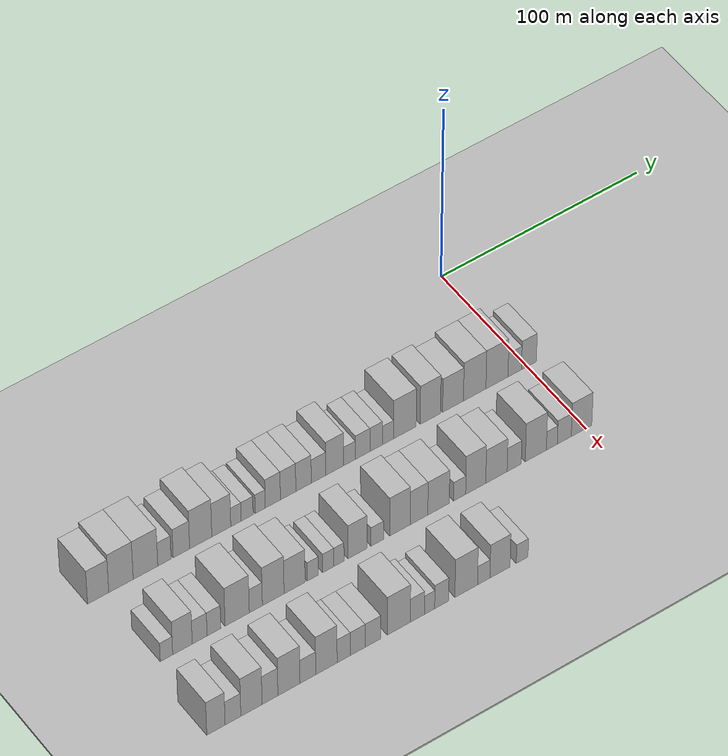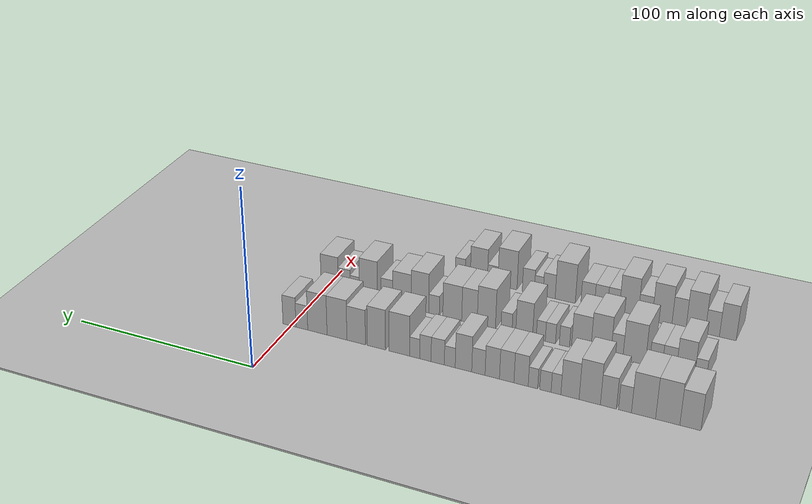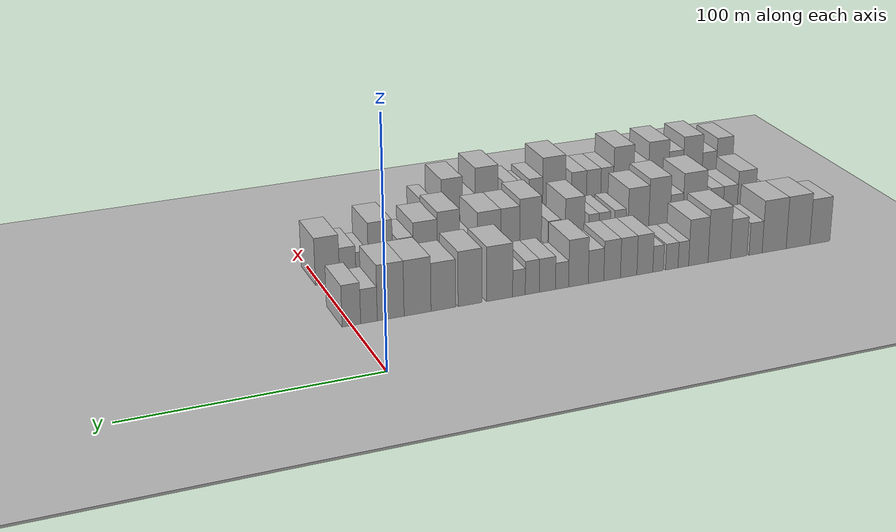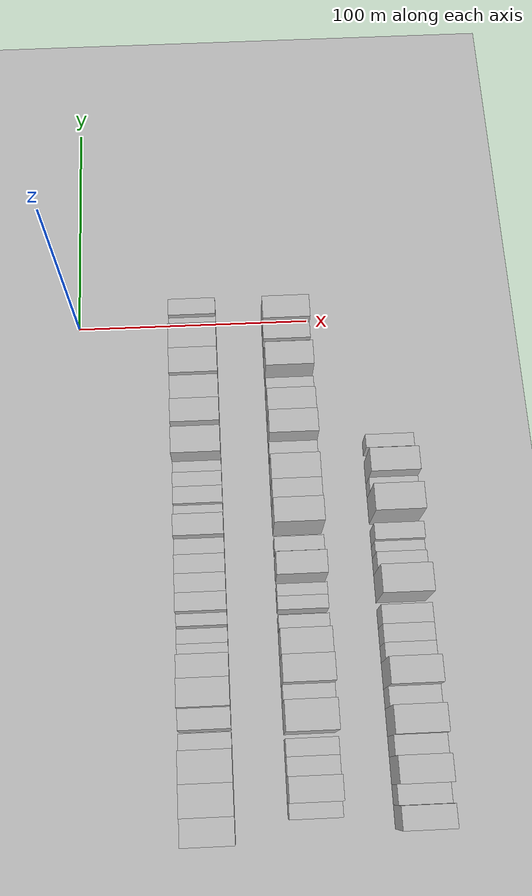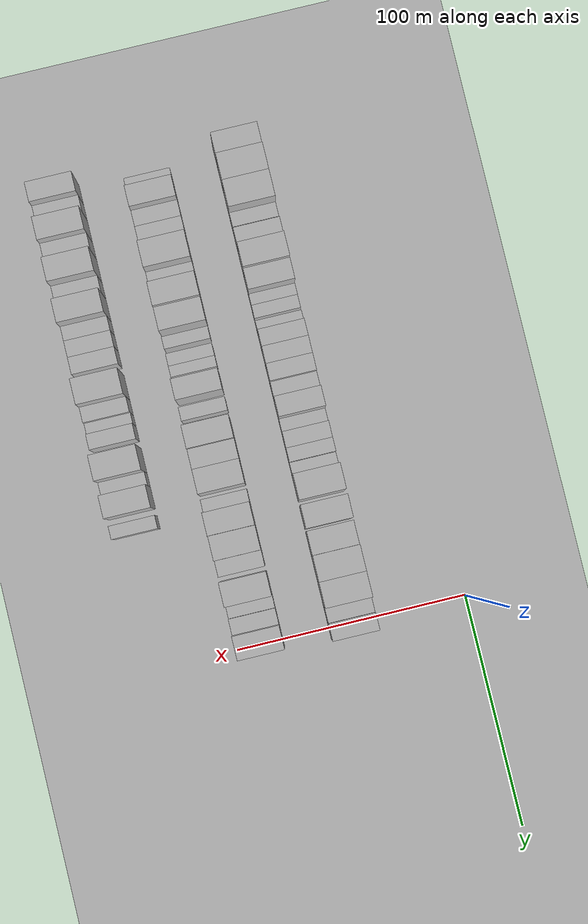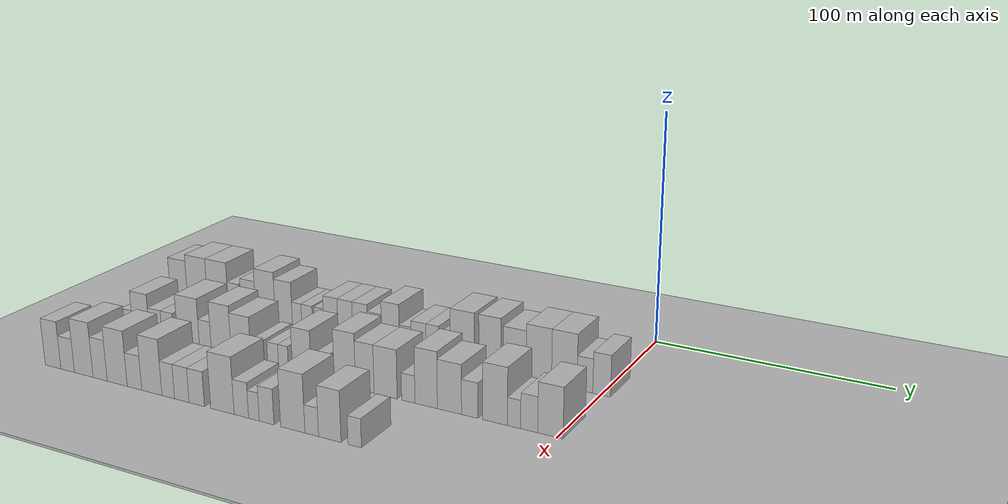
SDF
<sdf version="1.6">
 <world name="default">
  <include><name>ground_plane_1</name><uri>model://HANNAS_ground_plane</uri></include>
  <include>
   <name>ground_plane_2</name>
   <uri>model://HANNAS_ground_plane</uri>
   <pose>100 0 0  0 0 0</pose>
  </include>
  <model name="building_43">
   <static>1</static>
   <pose>50.0000 -208.1110 0 0.000000 0.000000 0.000000</pose>
   <link name="link">
    <pose>0 0 10.50 0 0 0</pose>
    <collision name="collision"><geometry><box><size>20.0000 9.9102 21.0000</size></box></geometry></collision>
    <visual name="visual">
     <cast_shadows>0</cast_shadows>
     <geometry><box><size>20.0000 9.9102 21.0000</size></box></geometry>
     <material>
      <script>
       <uri>model://HANNAS_wall/materials/scripts</uri>
       <uri>model://HANNAS_wall/materials/textures</uri>
       <name>vrc/HANNAS_wall</name>
      </script>
     </material>
    </visual>
   </link>
  </model>
  <model name="building_44">
   <static>1</static>
   <pose>50.0000 -197.3954 0 0.000000 0.000000 0.000000</pose>
   <link name="link">
    <pose>0 0 12.00 0 0 0</pose>
    <collision name="collision"><geometry><box><size>20.0000 11.5211 24.0000</size></box></geometry></collision>
    <visual name="visual">
     <cast_shadows>0</cast_shadows>
     <geometry><box><size>20.0000 11.5211 24.0000</size></box></geometry>
     <material>
      <script>
       <uri>model://HANNAS_wall/materials/scripts</uri>
       <uri>model://HANNAS_wall/materials/textures</uri>
       <name>vrc/HANNAS_wall</name>
      </script>
     </material>
    </visual>
   </link>
  </model>
  <model name="building_45">
   <static>1</static>
   <pose>50.0000 -185.8268 0 0.000000 0.000000 0.000000</pose>
   <link name="link">
    <pose>0 0 12.00 0 0 0</pose>
    <collision name="collision"><geometry><box><size>20.0000 11.6160 24.0000</size></box></geometry></collision>
    <visual name="visual">
     <cast_shadows>0</cast_shadows>
     <geometry><box><size>20.0000 11.6160 24.0000</size></box></geometry>
     <material>
      <script>
       <uri>model://HANNAS_wall/materials/scripts</uri>
       <uri>model://HANNAS_wall/materials/textures</uri>
       <name>vrc/HANNAS_wall</name>
      </script>
     </material>
    </visual>
   </link>
  </model>
  <model name="building_46">
   <static>1</static>
   <pose>50.0000 -176.8797 0 0.000000 0.000000 0.000000</pose>
   <link name="link">
    <pose>0 0 7.50 0 0 0</pose>
    <collision name="collision"><geometry><box><size>20.0000 6.2783 15.0000</size></box></geometry></collision>
    <visual name="visual">
     <cast_shadows>0</cast_shadows>
     <geometry><box><size>20.0000 6.2783 15.0000</size></box></geometry>
     <material>
      <script>
       <uri>model://HANNAS_wall/materials/scripts</uri>
       <uri>model://HANNAS_wall/materials/textures</uri>
       <name>vrc/HANNAS_wall</name>
      </script>
     </material>
    </visual>
   </link>
  </model>
  <model name="building_47">
   <static>1</static>
   <pose>50.0000 -168.8229 0 0.000000 0.000000 0.000000</pose>
   <link name="link">
    <pose>0 0 9.00 0 0 0</pose>
    <collision name="collision"><geometry><box><size>20.0000 7.8353 18.0000</size></box></geometry></collision>
    <visual name="visual">
     <cast_shadows>0</cast_shadows>
     <geometry><box><size>20.0000 7.8353 18.0000</size></box></geometry>
     <material>
      <script>
       <uri>model://HANNAS_wall/materials/scripts</uri>
       <uri>model://HANNAS_wall/materials/textures</uri>
       <name>vrc/HANNAS_wall</name>
      </script>
     </material>
    </visual>
   </link>
  </model>
  <model name="building_48">
   <static>1</static>
   <pose>50.0000 -159.6403 0 0.000000 0.000000 0.000000</pose>
   <link name="link">
    <pose>0 0 12.00 0 0 0</pose>
    <collision name="collision"><geometry><box><size>20.0000 10.5299 24.0000</size></box></geometry></collision>
    <visual name="visual">
     <cast_shadows>0</cast_shadows>
     <geometry><box><size>20.0000 10.5299 24.0000</size></box></geometry>
     <material>
      <script>
       <uri>model://HANNAS_wall/materials/scripts</uri>
       <uri>model://HANNAS_wall/materials/textures</uri>
       <name>vrc/HANNAS_wall</name>
      </script>
     </material>
    </visual>
   </link>
  </model>
  <model name="building_49">
   <static>1</static>
   <pose>50.0000 -149.8336 0 0.000000 0.000000 0.000000</pose>
   <link name="link">
    <pose>0 0 10.50 0 0 0</pose>
    <collision name="collision"><geometry><box><size>20.0000 9.0834 21.0000</size></box></geometry></collision>
    <visual name="visual">
     <cast_shadows>0</cast_shadows>
     <geometry><box><size>20.0000 9.0834 21.0000</size></box></geometry>
     <material>
      <script>
       <uri>model://HANNAS_wall/materials/scripts</uri>
       <uri>model://HANNAS_wall/materials/textures</uri>
       <name>vrc/HANNAS_wall</name>
      </script>
     </material>
    </visual>
   </link>
  </model>
  <model name="building_50">
   <static>1</static>
   <pose>50.0000 -142.8377 0 0.000000 0.000000 0.000000</pose>
   <link name="link">
    <pose>0 0 6.00 0 0 0</pose>
    <collision name="collision"><geometry><box><size>20.0000 4.9084 12.0000</size></box></geometry></collision>
    <visual name="visual">
     <cast_shadows>0</cast_shadows>
     <geometry><box><size>20.0000 4.9084 12.0000</size></box></geometry>
     <material>
      <script>
       <uri>model://HANNAS_wall/materials/scripts</uri>
       <uri>model://HANNAS_wall/materials/textures</uri>
       <name>vrc/HANNAS_wall</name>
      </script>
     </material>
    </visual>
   </link>
  </model>
  <model name="building_51">
   <static>1</static>
   <pose>50.0000 -137.5032 0 0.000000 0.000000 0.000000</pose>
   <link name="link">
    <pose>0 0 6.00 0 0 0</pose>
    <collision name="collision"><geometry><box><size>20.0000 5.7607 12.0000</size></box></geometry></collision>
    <visual name="visual">
     <cast_shadows>0</cast_shadows>
     <geometry><box><size>20.0000 5.7607 12.0000</size></box></geometry>
     <material>
      <script>
       <uri>model://HANNAS_wall/materials/scripts</uri>
       <uri>model://HANNAS_wall/materials/textures</uri>
       <name>vrc/HANNAS_wall</name>
      </script>
     </material>
    </visual>
   </link>
  </model>
  <model name="building_52">
   <static>1</static>
   <pose>50.0000 -131.1997 0 0.000000 0.000000 0.000000</pose>
   <link name="link">
    <pose>0 0 6.00 0 0 0</pose>
    <collision name="collision"><geometry><box><size>20.0000 4.8462 12.0000</size></box></geometry></collision>
    <visual name="visual">
     <cast_shadows>0</cast_shadows>
     <geometry><box><size>20.0000 4.8462 12.0000</size></box></geometry>
     <material>
      <script>
       <uri>model://HANNAS_wall/materials/scripts</uri>
       <uri>model://HANNAS_wall/materials/textures</uri>
       <name>vrc/HANNAS_wall</name>
      </script>
     </material>
    </visual>
   </link>
  </model>
  <model name="building_53">
   <static>1</static>
   <pose>50.0000 -125.1361 0 0.000000 0.000000 0.000000</pose>
   <link name="link">
    <pose>0 0 9.00 0 0 0</pose>
    <collision name="collision"><geometry><box><size>20.0000 7.2810 18.0000</size></box></geometry></collision>
    <visual name="visual">
     <cast_shadows>0</cast_shadows>
     <geometry><box><size>20.0000 7.2810 18.0000</size></box></geometry>
     <material>
      <script>
       <uri>model://HANNAS_wall/materials/scripts</uri>
       <uri>model://HANNAS_wall/materials/textures</uri>
       <name>vrc/HANNAS_wall</name>
      </script>
     </material>
    </visual>
   </link>
  </model>
  <model name="building_54">
   <static>1</static>
   <pose>50.0000 -117.7696 0 0.000000 0.000000 0.000000</pose>
   <link name="link">
    <pose>0 0 9.00 0 0 0</pose>
    <collision name="collision"><geometry><box><size>20.0000 7.4519 18.0000</size></box></geometry></collision>
    <visual name="visual">
     <cast_shadows>0</cast_shadows>
     <geometry><box><size>20.0000 7.4519 18.0000</size></box></geometry>
     <material>
      <script>
       <uri>model://HANNAS_wall/materials/scripts</uri>
       <uri>model://HANNAS_wall/materials/textures</uri>
       <name>vrc/HANNAS_wall</name>
      </script>
     </material>
    </visual>
   </link>
  </model>
  <model name="building_55">
   <static>1</static>
   <pose>50.0000 -110.3080 0 0.000000 0.000000 0.000000</pose>
   <link name="link">
    <pose>0 0 9.00 0 0 0</pose>
    <collision name="collision"><geometry><box><size>20.0000 7.4714 18.0000</size></box></geometry></collision>
    <visual name="visual">
     <cast_shadows>0</cast_shadows>
     <geometry><box><size>20.0000 7.4714 18.0000</size></box></geometry>
     <material>
      <script>
       <uri>model://HANNAS_wall/materials/scripts</uri>
       <uri>model://HANNAS_wall/materials/textures</uri>
       <name>vrc/HANNAS_wall</name>
      </script>
     </material>
    </visual>
   </link>
  </model>
  <model name="building_56">
   <static>1</static>
   <pose>50.0000 -103.0972 0 0.000000 0.000000 0.000000</pose>
   <link name="link">
    <pose>0 0 7.50 0 0 0</pose>
    <collision name="collision"><geometry><box><size>20.0000 6.9502 15.0000</size></box></geometry></collision>
    <visual name="visual">
     <cast_shadows>0</cast_shadows>
     <geometry><box><size>20.0000 6.9502 15.0000</size></box></geometry>
     <material>
      <script>
       <uri>model://HANNAS_wall/materials/scripts</uri>
       <uri>model://HANNAS_wall/materials/textures</uri>
       <name>vrc/HANNAS_wall</name>
      </script>
     </material>
    </visual>
   </link>
  </model>
  <model name="building_57">
   <static>1</static>
   <pose>50.0000 -95.2676 0 0.000000 0.000000 0.000000</pose>
   <link name="link">
    <pose>0 0 10.50 0 0 0</pose>
    <collision name="collision"><geometry><box><size>20.0000 8.7089 21.0000</size></box></geometry></collision>
    <visual name="visual">
     <cast_shadows>0</cast_shadows>
     <geometry><box><size>20.0000 8.7089 21.0000</size></box></geometry>
     <material>
      <script>
       <uri>model://HANNAS_wall/materials/scripts</uri>
       <uri>model://HANNAS_wall/materials/textures</uri>
       <name>vrc/HANNAS_wall</name>
      </script>
     </material>
    </visual>
   </link>
  </model>
  <model name="building_58">
   <static>1</static>
   <pose>50.0000 -88.0354 0 0.000000 0.000000 0.000000</pose>
   <link name="link">
    <pose>0 0 6.00 0 0 0</pose>
    <collision name="collision"><geometry><box><size>20.0000 5.7555 12.0000</size></box></geometry></collision>
    <visual name="visual">
     <cast_shadows>0</cast_shadows>
     <geometry><box><size>20.0000 5.7555 12.0000</size></box></geometry>
     <material>
      <script>
       <uri>model://HANNAS_wall/materials/scripts</uri>
       <uri>model://HANNAS_wall/materials/textures</uri>
       <name>vrc/HANNAS_wall</name>
      </script>
     </material>
    </visual>
   </link>
  </model>
  <model name="building_59">
   <static>1</static>
   <pose>50.0000 -81.6171 0 0.000000 0.000000 0.000000</pose>
   <link name="link">
    <pose>0 0 7.50 0 0 0</pose>
    <collision name="collision"><geometry><box><size>20.0000 7.0811 15.0000</size></box></geometry></collision>
    <visual name="visual">
     <cast_shadows>0</cast_shadows>
     <geometry><box><size>20.0000 7.0811 15.0000</size></box></geometry>
     <material>
      <script>
       <uri>model://HANNAS_wall/materials/scripts</uri>
       <uri>model://HANNAS_wall/materials/textures</uri>
       <name>vrc/HANNAS_wall</name>
      </script>
     </material>
    </visual>
   </link>
  </model>
  <model name="building_60">
   <static>1</static>
   <pose>50.0000 -75.0385 0 0.000000 0.000000 0.000000</pose>
   <link name="link">
    <pose>0 0 7.50 0 0 0</pose>
    <collision name="collision"><geometry><box><size>20.0000 6.0762 15.0000</size></box></geometry></collision>
    <visual name="visual">
     <cast_shadows>0</cast_shadows>
     <geometry><box><size>20.0000 6.0762 15.0000</size></box></geometry>
     <material>
      <script>
       <uri>model://HANNAS_wall/materials/scripts</uri>
       <uri>model://HANNAS_wall/materials/textures</uri>
       <name>vrc/HANNAS_wall</name>
      </script>
     </material>
    </visual>
   </link>
  </model>
  <model name="building_61">
   <static>1</static>
   <pose>50.0000 -69.2660 0 0.000000 0.000000 0.000000</pose>
   <link name="link">
    <pose>0 0 6.00 0 0 0</pose>
    <collision name="collision"><geometry><box><size>20.0000 5.4688 12.0000</size></box></geometry></collision>
    <visual name="visual">
     <cast_shadows>0</cast_shadows>
     <geometry><box><size>20.0000 5.4688 12.0000</size></box></geometry>
     <material>
      <script>
       <uri>model://HANNAS_wall/materials/scripts</uri>
       <uri>model://HANNAS_wall/materials/textures</uri>
       <name>vrc/HANNAS_wall</name>
      </script>
     </material>
    </visual>
   </link>
  </model>
  <model name="building_62">
   <static>1</static>
   <pose>50.0000 -60.9565 0 0.000000 0.000000 0.000000</pose>
   <link name="link">
    <pose>0 0 12.00 0 0 0</pose>
    <collision name="collision"><geometry><box><size>20.0000 11.1501 24.0000</size></box></geometry></collision>
    <visual name="visual">
     <cast_shadows>0</cast_shadows>
     <geometry><box><size>20.0000 11.1501 24.0000</size></box></geometry>
     <material>
      <script>
       <uri>model://HANNAS_wall/materials/scripts</uri>
       <uri>model://HANNAS_wall/materials/textures</uri>
       <name>vrc/HANNAS_wall</name>
      </script>
     </material>
    </visual>
   </link>
  </model>
  <model name="building_63">
   <static>1</static>
   <pose>50.0000 -48.3628 0 0.000000 0.000000 0.000000</pose>
   <link name="link">
    <pose>0 0 12.00 0 0 0</pose>
    <collision name="collision"><geometry><box><size>20.0000 10.0373 24.0000</size></box></geometry></collision>
    <visual name="visual">
     <cast_shadows>0</cast_shadows>
     <geometry><box><size>20.0000 10.0373 24.0000</size></box></geometry>
     <material>
      <script>
       <uri>model://HANNAS_wall/materials/scripts</uri>
       <uri>model://HANNAS_wall/materials/textures</uri>
       <name>vrc/HANNAS_wall</name>
      </script>
     </material>
    </visual>
   </link>
  </model>
  <model name="building_64">
   <static>1</static>
   <pose>50.0000 -37.1862 0 0.000000 0.000000 0.000000</pose>
   <link name="link">
    <pose>0 0 10.50 0 0 0</pose>
    <collision name="collision"><geometry><box><size>20.0000 10.3160 21.0000</size></box></geometry></collision>
    <visual name="visual">
     <cast_shadows>0</cast_shadows>
     <geometry><box><size>20.0000 10.3160 21.0000</size></box></geometry>
     <material>
      <script>
       <uri>model://HANNAS_wall/materials/scripts</uri>
       <uri>model://HANNAS_wall/materials/textures</uri>
       <name>vrc/HANNAS_wall</name>
      </script>
     </material>
    </visual>
   </link>
  </model>
  <model name="building_65">
   <static>1</static>
   <pose>50.0000 -26.4524 0 0.000000 0.000000 0.000000</pose>
   <link name="link">
    <pose>0 0 12.00 0 0 0</pose>
    <collision name="collision"><geometry><box><size>20.0000 11.1516 24.0000</size></box></geometry></collision>
    <visual name="visual">
     <cast_shadows>0</cast_shadows>
     <geometry><box><size>20.0000 11.1516 24.0000</size></box></geometry>
     <material>
      <script>
       <uri>model://HANNAS_wall/materials/scripts</uri>
       <uri>model://HANNAS_wall/materials/textures</uri>
       <name>vrc/HANNAS_wall</name>
      </script>
     </material>
    </visual>
   </link>
  </model>
  <model name="building_66">
   <static>1</static>
   <pose>50.0000 -15.3967 0 0.000000 0.000000 0.000000</pose>
   <link name="link">
    <pose>0 0 12.00 0 0 0</pose>
    <collision name="collision"><geometry><box><size>20.0000 10.9597 24.0000</size></box></geometry></collision>
    <visual name="visual">
     <cast_shadows>0</cast_shadows>
     <geometry><box><size>20.0000 10.9597 24.0000</size></box></geometry>
     <material>
      <script>
       <uri>model://HANNAS_wall/materials/scripts</uri>
       <uri>model://HANNAS_wall/materials/textures</uri>
       <name>vrc/HANNAS_wall</name>
      </script>
     </material>
    </visual>
   </link>
  </model>
  <model name="building_67">
   <static>1</static>
   <pose>50.0000 -6.5443 0 0.000000 0.000000 0.000000</pose>
   <link name="link">
    <pose>0 0 7.50 0 0 0</pose>
    <collision name="collision"><geometry><box><size>20.0000 6.7450 15.0000</size></box></geometry></collision>
    <visual name="visual">
     <cast_shadows>0</cast_shadows>
     <geometry><box><size>20.0000 6.7450 15.0000</size></box></geometry>
     <material>
      <script>
       <uri>model://HANNAS_wall/materials/scripts</uri>
       <uri>model://HANNAS_wall/materials/textures</uri>
       <name>vrc/HANNAS_wall</name>
      </script>
     </material>
    </visual>
   </link>
  </model>
  <model name="building_68">
   <static>1</static>
   <pose>50.0000 0.5645 0 0.000000 0.000000 0.000000</pose>
   <link name="link">
    <pose>0 0 9.00 0 0 0</pose>
    <collision name="collision"><geometry><box><size>20.0000 7.4726 18.0000</size></box></geometry></collision>
    <visual name="visual">
     <cast_shadows>0</cast_shadows>
     <geometry><box><size>20.0000 7.4726 18.0000</size></box></geometry>
     <material>
      <script>
       <uri>model://HANNAS_wall/materials/scripts</uri>
       <uri>model://HANNAS_wall/materials/textures</uri>
       <name>vrc/HANNAS_wall</name>
      </script>
     </material>
    </visual>
   </link>
  </model>
  <model name="building_188">
   <static>1</static>
   <pose>90.0000 -202.6643 0 0.000000 0.000000 0.000000</pose>
   <link name="link">
    <pose>0 0 6.00 0 0 0</pose>
    <collision name="collision"><geometry><box><size>20.0000 5.8114 12.0000</size></box></geometry></collision>
    <visual name="visual">
     <cast_shadows>0</cast_shadows>
     <geometry><box><size>20.0000 5.8114 12.0000</size></box></geometry>
     <material>
      <script>
       <uri>model://HANNAS_wall/materials/scripts</uri>
       <uri>model://HANNAS_wall/materials/textures</uri>
       <name>vrc/HANNAS_wall</name>
      </script>
     </material>
    </visual>
   </link>
  </model>
  <model name="building_189">
   <static>1</static>
   <pose>90.0000 -195.1871 0 0.000000 0.000000 0.000000</pose>
   <link name="link">
    <pose>0 0 10.50 0 0 0</pose>
    <collision name="collision"><geometry><box><size>20.0000 9.1430 21.0000</size></box></geometry></collision>
    <visual name="visual">
     <cast_shadows>0</cast_shadows>
     <geometry><box><size>20.0000 9.1430 21.0000</size></box></geometry>
     <material>
      <script>
       <uri>model://HANNAS_wall/materials/scripts</uri>
       <uri>model://HANNAS_wall/materials/textures</uri>
       <name>vrc/HANNAS_wall</name>
      </script>
     </material>
    </visual>
   </link>
  </model>
  <model name="building_190">
   <static>1</static>
   <pose>90.0000 -187.1275 0 0.000000 0.000000 0.000000</pose>
   <link name="link">
    <pose>0 0 7.50 0 0 0</pose>
    <collision name="collision"><geometry><box><size>20.0000 6.9762 15.0000</size></box></geometry></collision>
    <visual name="visual">
     <cast_shadows>0</cast_shadows>
     <geometry><box><size>20.0000 6.9762 15.0000</size></box></geometry>
     <material>
      <script>
       <uri>model://HANNAS_wall/materials/scripts</uri>
       <uri>model://HANNAS_wall/materials/textures</uri>
       <name>vrc/HANNAS_wall</name>
      </script>
     </material>
    </visual>
   </link>
  </model>
  <model name="building_191">
   <static>1</static>
   <pose>90.0000 -180.4109 0 0.000000 0.000000 0.000000</pose>
   <link name="link">
    <pose>0 0 7.50 0 0 0</pose>
    <collision name="collision"><geometry><box><size>20.0000 6.4570 15.0000</size></box></geometry></collision>
    <visual name="visual">
     <cast_shadows>0</cast_shadows>
     <geometry><box><size>20.0000 6.4570 15.0000</size></box></geometry>
     <material>
      <script>
       <uri>model://HANNAS_wall/materials/scripts</uri>
       <uri>model://HANNAS_wall/materials/textures</uri>
       <name>vrc/HANNAS_wall</name>
      </script>
     </material>
    </visual>
   </link>
  </model>
  <model name="building_192">
   <static>1</static>
   <pose>90.0000 -169.4578 0 0.000000 0.000000 0.000000</pose>
   <link name="link">
    <pose>0 0 12.00 0 0 0</pose>
    <collision name="collision"><geometry><box><size>20.0000 11.4491 24.0000</size></box></geometry></collision>
    <visual name="visual">
     <cast_shadows>0</cast_shadows>
     <geometry><box><size>20.0000 11.4491 24.0000</size></box></geometry>
     <material>
      <script>
       <uri>model://HANNAS_wall/materials/scripts</uri>
       <uri>model://HANNAS_wall/materials/textures</uri>
       <name>vrc/HANNAS_wall</name>
      </script>
     </material>
    </visual>
   </link>
  </model>
  <model name="building_193">
   <static>1</static>
   <pose>90.0000 -160.6461 0 0.000000 0.000000 0.000000</pose>
   <link name="link">
    <pose>0 0 7.50 0 0 0</pose>
    <collision name="collision"><geometry><box><size>20.0000 6.1744 15.0000</size></box></geometry></collision>
    <visual name="visual">
     <cast_shadows>0</cast_shadows>
     <geometry><box><size>20.0000 6.1744 15.0000</size></box></geometry>
     <material>
      <script>
       <uri>model://HANNAS_wall/materials/scripts</uri>
       <uri>model://HANNAS_wall/materials/textures</uri>
       <name>vrc/HANNAS_wall</name>
      </script>
     </material>
    </visual>
   </link>
  </model>
  <model name="building_194">
   <static>1</static>
   <pose>90.0000 -152.4023 0 0.000000 0.000000 0.000000</pose>
   <link name="link">
    <pose>0 0 12.00 0 0 0</pose>
    <collision name="collision"><geometry><box><size>20.0000 10.3132 24.0000</size></box></geometry></collision>
    <visual name="visual">
     <cast_shadows>0</cast_shadows>
     <geometry><box><size>20.0000 10.3132 24.0000</size></box></geometry>
     <material>
      <script>
       <uri>model://HANNAS_wall/materials/scripts</uri>
       <uri>model://HANNAS_wall/materials/textures</uri>
       <name>vrc/HANNAS_wall</name>
      </script>
     </material>
    </visual>
   </link>
  </model>
  <model name="building_195">
   <static>1</static>
   <pose>90.0000 -142.2316 0 0.000000 0.000000 0.000000</pose>
   <link name="link">
    <pose>0 0 10.50 0 0 0</pose>
    <collision name="collision"><geometry><box><size>20.0000 10.0282 21.0000</size></box></geometry></collision>
    <visual name="visual">
     <cast_shadows>0</cast_shadows>
     <geometry><box><size>20.0000 10.0282 21.0000</size></box></geometry>
     <material>
      <script>
       <uri>model://HANNAS_wall/materials/scripts</uri>
       <uri>model://HANNAS_wall/materials/textures</uri>
       <name>vrc/HANNAS_wall</name>
      </script>
     </material>
    </visual>
   </link>
  </model>
  <model name="building_196">
   <static>1</static>
   <pose>90.0000 -133.5268 0 0.000000 0.000000 0.000000</pose>
   <link name="link">
    <pose>0 0 6.00 0 0 0</pose>
    <collision name="collision"><geometry><box><size>20.0000 5.3814 12.0000</size></box></geometry></collision>
    <visual name="visual">
     <cast_shadows>0</cast_shadows>
     <geometry><box><size>20.0000 5.3814 12.0000</size></box></geometry>
     <material>
      <script>
       <uri>model://HANNAS_wall/materials/scripts</uri>
       <uri>model://HANNAS_wall/materials/textures</uri>
       <name>vrc/HANNAS_wall</name>
      </script>
     </material>
    </visual>
   </link>
  </model>
  <model name="building_197">
   <static>1</static>
   <pose>90.0000 -126.1355 0 0.000000 0.000000 0.000000</pose>
   <link name="link">
    <pose>0 0 6.00 0 0 0</pose>
    <collision name="collision"><geometry><box><size>20.0000 5.4012 12.0000</size></box></geometry></collision>
    <visual name="visual">
     <cast_shadows>0</cast_shadows>
     <geometry><box><size>20.0000 5.4012 12.0000</size></box></geometry>
     <material>
      <script>
       <uri>model://HANNAS_wall/materials/scripts</uri>
       <uri>model://HANNAS_wall/materials/textures</uri>
       <name>vrc/HANNAS_wall</name>
      </script>
     </material>
    </visual>
   </link>
  </model>
  <model name="building_198">
   <static>1</static>
   <pose>90.0000 -121.0316 0 0.000000 0.000000 0.000000</pose>
   <link name="link">
    <pose>0 0 6.00 0 0 0</pose>
    <collision name="collision"><geometry><box><size>20.0000 4.8067 12.0000</size></box></geometry></collision>
    <visual name="visual">
     <cast_shadows>0</cast_shadows>
     <geometry><box><size>20.0000 4.8067 12.0000</size></box></geometry>
     <material>
      <script>
       <uri>model://HANNAS_wall/materials/scripts</uri>
       <uri>model://HANNAS_wall/materials/textures</uri>
       <name>vrc/HANNAS_wall</name>
      </script>
     </material>
    </visual>
   </link>
  </model>
  <model name="building_199">
   <static>1</static>
   <pose>90.0000 -112.1156 0 0.000000 0.000000 0.000000</pose>
   <link name="link">
    <pose>0 0 10.50 0 0 0</pose>
    <collision name="collision"><geometry><box><size>20.0000 9.0252 21.0000</size></box></geometry></collision>
    <visual name="visual">
     <cast_shadows>0</cast_shadows>
     <geometry><box><size>20.0000 9.0252 21.0000</size></box></geometry>
     <material>
      <script>
       <uri>model://HANNAS_wall/materials/scripts</uri>
       <uri>model://HANNAS_wall/materials/textures</uri>
       <name>vrc/HANNAS_wall</name>
      </script>
     </material>
    </visual>
   </link>
  </model>
  <model name="building_200">
   <static>1</static>
   <pose>90.0000 -102.6049 0 0.000000 0.000000 0.000000</pose>
   <link name="link">
    <pose>0 0 6.00 0 0 0</pose>
    <collision name="collision"><geometry><box><size>20.0000 5.9962 12.0000</size></box></geometry></collision>
    <visual name="visual">
     <cast_shadows>0</cast_shadows>
     <geometry><box><size>20.0000 5.9962 12.0000</size></box></geometry>
     <material>
      <script>
       <uri>model://HANNAS_wall/materials/scripts</uri>
       <uri>model://HANNAS_wall/materials/textures</uri>
       <name>vrc/HANNAS_wall</name>
      </script>
     </material>
    </visual>
   </link>
  </model>
  <model name="building_201">
   <static>1</static>
   <pose>90.0000 -91.6296 0 0.000000 0.000000 0.000000</pose>
   <link name="link">
    <pose>0 0 12.00 0 0 0</pose>
    <collision name="collision"><geometry><box><size>20.0000 9.9545 24.0000</size></box></geometry></collision>
    <visual name="visual">
     <cast_shadows>0</cast_shadows>
     <geometry><box><size>20.0000 9.9545 24.0000</size></box></geometry>
     <material>
      <script>
       <uri>model://HANNAS_wall/materials/scripts</uri>
       <uri>model://HANNAS_wall/materials/textures</uri>
       <name>vrc/HANNAS_wall</name>
      </script>
     </material>
    </visual>
   </link>
  </model>
  <model name="building_202">
   <static>1</static>
   <pose>90.0000 -82.3786 0 0.000000 0.000000 0.000000</pose>
   <link name="link">
    <pose>0 0 10.50 0 0 0</pose>
    <collision name="collision"><geometry><box><size>20.0000 8.5473 21.0000</size></box></geometry></collision>
    <visual name="visual">
     <cast_shadows>0</cast_shadows>
     <geometry><box><size>20.0000 8.5473 21.0000</size></box></geometry>
     <material>
      <script>
       <uri>model://HANNAS_wall/materials/scripts</uri>
       <uri>model://HANNAS_wall/materials/textures</uri>
       <name>vrc/HANNAS_wall</name>
      </script>
     </material>
    </visual>
   </link>
  </model>
  <model name="building_203">
   <static>1</static>
   <pose>90.0000 -72.8640 0 0.000000 0.000000 0.000000</pose>
   <link name="link">
    <pose>0 0 10.50 0 0 0</pose>
    <collision name="collision"><geometry><box><size>20.0000 10.4819 21.0000</size></box></geometry></collision>
    <visual name="visual">
     <cast_shadows>0</cast_shadows>
     <geometry><box><size>20.0000 10.4819 21.0000</size></box></geometry>
     <material>
      <script>
       <uri>model://HANNAS_wall/materials/scripts</uri>
       <uri>model://HANNAS_wall/materials/textures</uri>
       <name>vrc/HANNAS_wall</name>
      </script>
     </material>
    </visual>
   </link>
  </model>
  <model name="building_204">
   <static>1</static>
   <pose>90.0000 -62.6408 0 0.000000 0.000000 0.000000</pose>
   <link name="link">
    <pose>0 0 6.00 0 0 0</pose>
    <collision name="collision"><geometry><box><size>20.0000 5.9647 12.0000</size></box></geometry></collision>
    <visual name="visual">
     <cast_shadows>0</cast_shadows>
     <geometry><box><size>20.0000 5.9647 12.0000</size></box></geometry>
     <material>
      <script>
       <uri>model://HANNAS_wall/materials/scripts</uri>
       <uri>model://HANNAS_wall/materials/textures</uri>
       <name>vrc/HANNAS_wall</name>
      </script>
     </material>
    </visual>
   </link>
  </model>
  <model name="building_205">
   <static>1</static>
   <pose>90.0000 -54.7404 0 0.000000 0.000000 0.000000</pose>
   <link name="link">
    <pose>0 0 12.00 0 0 0</pose>
    <collision name="collision"><geometry><box><size>20.0000 9.8361 24.0000</size></box></geometry></collision>
    <visual name="visual">
     <cast_shadows>0</cast_shadows>
     <geometry><box><size>20.0000 9.8361 24.0000</size></box></geometry>
     <material>
      <script>
       <uri>model://HANNAS_wall/materials/scripts</uri>
       <uri>model://HANNAS_wall/materials/textures</uri>
       <name>vrc/HANNAS_wall</name>
      </script>
     </material>
    </visual>
   </link>
  </model>
  <model name="building_206">
   <static>1</static>
   <pose>90.0000 -44.5728 0 0.000000 0.000000 0.000000</pose>
   <link name="link">
    <pose>0 0 10.50 0 0 0</pose>
    <collision name="collision"><geometry><box><size>20.0000 10.4991 21.0000</size></box></geometry></collision>
    <visual name="visual">
     <cast_shadows>0</cast_shadows>
     <geometry><box><size>20.0000 10.4991 21.0000</size></box></geometry>
     <material>
      <script>
       <uri>model://HANNAS_wall/materials/scripts</uri>
       <uri>model://HANNAS_wall/materials/textures</uri>
       <name>vrc/HANNAS_wall</name>
      </script>
     </material>
    </visual>
   </link>
  </model>
  <model name="building_207">
   <static>1</static>
   <pose>90.0000 -35.8467 0 0.000000 0.000000 0.000000</pose>
   <link name="link">
    <pose>0 0 7.50 0 0 0</pose>
    <collision name="collision"><geometry><box><size>20.0000 6.9532 15.0000</size></box></geometry></collision>
    <visual name="visual">
     <cast_shadows>0</cast_shadows>
     <geometry><box><size>20.0000 6.9532 15.0000</size></box></geometry>
     <material>
      <script>
       <uri>model://HANNAS_wall/materials/scripts</uri>
       <uri>model://HANNAS_wall/materials/textures</uri>
       <name>vrc/HANNAS_wall</name>
      </script>
     </material>
    </visual>
   </link>
  </model>
  <model name="building_208">
   <static>1</static>
   <pose>90.0000 -25.1551 0 0.000000 0.000000 0.000000</pose>
   <link name="link">
    <pose>0 0 12.00 0 0 0</pose>
    <collision name="collision"><geometry><box><size>20.0000 10.4300 24.0000</size></box></geometry></collision>
    <visual name="visual">
     <cast_shadows>0</cast_shadows>
     <geometry><box><size>20.0000 10.4300 24.0000</size></box></geometry>
     <material>
      <script>
       <uri>model://HANNAS_wall/materials/scripts</uri>
       <uri>model://HANNAS_wall/materials/textures</uri>
       <name>vrc/HANNAS_wall</name>
      </script>
     </material>
    </visual>
   </link>
  </model>
  <model name="building_209">
   <static>1</static>
   <pose>90.0000 -17.2387 0 0.000000 0.000000 0.000000</pose>
   <link name="link">
    <pose>0 0 6.00 0 0 0</pose>
    <collision name="collision"><geometry><box><size>20.0000 5.4028 12.0000</size></box></geometry></collision>
    <visual name="visual">
     <cast_shadows>0</cast_shadows>
     <geometry><box><size>20.0000 5.4028 12.0000</size></box></geometry>
     <material>
      <script>
       <uri>model://HANNAS_wall/materials/scripts</uri>
       <uri>model://HANNAS_wall/materials/textures</uri>
       <name>vrc/HANNAS_wall</name>
      </script>
     </material>
    </visual>
   </link>
  </model>
  <model name="building_210">
   <static>1</static>
   <pose>90.0000 -11.0630 0 0.000000 0.000000 0.000000</pose>
   <link name="link">
    <pose>0 0 7.50 0 0 0</pose>
    <collision name="collision"><geometry><box><size>20.0000 6.9486 15.0000</size></box></geometry></collision>
    <visual name="visual">
     <cast_shadows>0</cast_shadows>
     <geometry><box><size>20.0000 6.9486 15.0000</size></box></geometry>
     <material>
      <script>
       <uri>model://HANNAS_wall/materials/scripts</uri>
       <uri>model://HANNAS_wall/materials/textures</uri>
       <name>vrc/HANNAS_wall</name>
      </script>
     </material>
    </visual>
   </link>
  </model>
  <model name="building_211">
   <static>1</static>
   <pose>90.0000 -2.4763 0 0.000000 0.000000 0.000000</pose>
   <link name="link">
    <pose>0 0 10.50 0 0 0</pose>
    <collision name="collision"><geometry><box><size>20.0000 10.2248 21.0000</size></box></geometry></collision>
    <visual name="visual">
     <cast_shadows>0</cast_shadows>
     <geometry><box><size>20.0000 10.2248 21.0000</size></box></geometry>
     <material>
      <script>
       <uri>model://HANNAS_wall/materials/scripts</uri>
       <uri>model://HANNAS_wall/materials/textures</uri>
       <name>vrc/HANNAS_wall</name>
      </script>
     </material>
    </visual>
   </link>
  </model>
  <model name="building_324">
   <static>1</static>
   <pose>130.0000 -206.5401 0 0.000000 0.000000 0.000000</pose>
   <link name="link">
    <pose>0 0 10.50 0 0 0</pose>
    <collision name="collision"><geometry><box><size>20.0000 8.5243 21.0000</size></box></geometry></collision>
    <visual name="visual">
     <cast_shadows>0</cast_shadows>
     <geometry><box><size>20.0000 8.5243 21.0000</size></box></geometry>
     <material>
      <script>
       <uri>model://HANNAS_wall/materials/scripts</uri>
       <uri>model://HANNAS_wall/materials/textures</uri>
       <name>vrc/HANNAS_wall</name>
      </script>
     </material>
    </visual>
   </link>
  </model>
  <model name="building_325">
   <static>1</static>
   <pose>130.0000 -198.6207 0 0.000000 0.000000 0.000000</pose>
   <link name="link">
    <pose>0 0 7.50 0 0 0</pose>
    <collision name="collision"><geometry><box><size>20.0000 7.3146 15.0000</size></box></geometry></collision>
    <visual name="visual">
     <cast_shadows>0</cast_shadows>
     <geometry><box><size>20.0000 7.3146 15.0000</size></box></geometry>
     <material>
      <script>
       <uri>model://HANNAS_wall/materials/scripts</uri>
       <uri>model://HANNAS_wall/materials/textures</uri>
       <name>vrc/HANNAS_wall</name>
      </script>
     </material>
    </visual>
   </link>
  </model>
  <model name="building_326">
   <static>1</static>
   <pose>130.0000 -190.0081 0 0.000000 0.000000 0.000000</pose>
   <link name="link">
    <pose>0 0 12.00 0 0 0</pose>
    <collision name="collision"><geometry><box><size>20.0000 9.9106 24.0000</size></box></geometry></collision>
    <visual name="visual">
     <cast_shadows>0</cast_shadows>
     <geometry><box><size>20.0000 9.9106 24.0000</size></box></geometry>
     <material>
      <script>
       <uri>model://HANNAS_wall/materials/scripts</uri>
       <uri>model://HANNAS_wall/materials/textures</uri>
       <name>vrc/HANNAS_wall</name>
      </script>
     </material>
    </visual>
   </link>
  </model>
  <model name="building_327">
   <static>1</static>
   <pose>130.0000 -181.3514 0 0.000000 0.000000 0.000000</pose>
   <link name="link">
    <pose>0 0 9.00 0 0 0</pose>
    <collision name="collision"><geometry><box><size>20.0000 7.4029 18.0000</size></box></geometry></collision>
    <visual name="visual">
     <cast_shadows>0</cast_shadows>
     <geometry><box><size>20.0000 7.4029 18.0000</size></box></geometry>
     <material>
      <script>
       <uri>model://HANNAS_wall/materials/scripts</uri>
       <uri>model://HANNAS_wall/materials/textures</uri>
       <name>vrc/HANNAS_wall</name>
      </script>
     </material>
    </visual>
   </link>
  </model>
  <model name="building_328">
   <static>1</static>
   <pose>130.0000 -172.4671 0 0.000000 0.000000 0.000000</pose>
   <link name="link">
    <pose>0 0 12.00 0 0 0</pose>
    <collision name="collision"><geometry><box><size>20.0000 10.3655 24.0000</size></box></geometry></collision>
    <visual name="visual">
     <cast_shadows>0</cast_shadows>
     <geometry><box><size>20.0000 10.3655 24.0000</size></box></geometry>
     <material>
      <script>
       <uri>model://HANNAS_wall/materials/scripts</uri>
       <uri>model://HANNAS_wall/materials/textures</uri>
       <name>vrc/HANNAS_wall</name>
      </script>
     </material>
    </visual>
   </link>
  </model>
  <model name="building_329">
   <static>1</static>
   <pose>130.0000 -163.5837 0 0.000000 0.000000 0.000000</pose>
   <link name="link">
    <pose>0 0 7.50 0 0 0</pose>
    <collision name="collision"><geometry><box><size>20.0000 7.4013 15.0000</size></box></geometry></collision>
    <visual name="visual">
     <cast_shadows>0</cast_shadows>
     <geometry><box><size>20.0000 7.4013 15.0000</size></box></geometry>
     <material>
      <script>
       <uri>model://HANNAS_wall/materials/scripts</uri>
       <uri>model://HANNAS_wall/materials/textures</uri>
       <name>vrc/HANNAS_wall</name>
      </script>
     </material>
    </visual>
   </link>
  </model>
  <model name="building_330">
   <static>1</static>
   <pose>130.0000 -154.8156 0 0.000000 0.000000 0.000000</pose>
   <link name="link">
    <pose>0 0 12.00 0 0 0</pose>
    <collision name="collision"><geometry><box><size>20.0000 10.1349 24.0000</size></box></geometry></collision>
    <visual name="visual">
     <cast_shadows>0</cast_shadows>
     <geometry><box><size>20.0000 10.1349 24.0000</size></box></geometry>
     <material>
      <script>
       <uri>model://HANNAS_wall/materials/scripts</uri>
       <uri>model://HANNAS_wall/materials/textures</uri>
       <name>vrc/HANNAS_wall</name>
      </script>
     </material>
    </visual>
   </link>
  </model>
  <model name="building_331">
   <static>1</static>
   <pose>130.0000 -146.6207 0 0.000000 0.000000 0.000000</pose>
   <link name="link">
    <pose>0 0 7.50 0 0 0</pose>
    <collision name="collision"><geometry><box><size>20.0000 6.2551 15.0000</size></box></geometry></collision>
    <visual name="visual">
     <cast_shadows>0</cast_shadows>
     <geometry><box><size>20.0000 6.2551 15.0000</size></box></geometry>
     <material>
      <script>
       <uri>model://HANNAS_wall/materials/scripts</uri>
       <uri>model://HANNAS_wall/materials/textures</uri>
       <name>vrc/HANNAS_wall</name>
      </script>
     </material>
    </visual>
   </link>
  </model>
  <model name="building_332">
   <static>1</static>
   <pose>130.0000 -139.9472 0 0.000000 0.000000 0.000000</pose>
   <link name="link">
    <pose>0 0 7.50 0 0 0</pose>
    <collision name="collision"><geometry><box><size>20.0000 7.0919 15.0000</size></box></geometry></collision>
    <visual name="visual">
     <cast_shadows>0</cast_shadows>
     <geometry><box><size>20.0000 7.0919 15.0000</size></box></geometry>
     <material>
      <script>
       <uri>model://HANNAS_wall/materials/scripts</uri>
       <uri>model://HANNAS_wall/materials/textures</uri>
       <name>vrc/HANNAS_wall</name>
      </script>
     </material>
    </visual>
   </link>
  </model>
  <model name="building_333">
   <static>1</static>
   <pose>130.0000 -132.6904 0 0.000000 0.000000 0.000000</pose>
   <link name="link">
    <pose>0 0 7.50 0 0 0</pose>
    <collision name="collision"><geometry><box><size>20.0000 7.4218 15.0000</size></box></geometry></collision>
    <visual name="visual">
     <cast_shadows>0</cast_shadows>
     <geometry><box><size>20.0000 7.4218 15.0000</size></box></geometry>
     <material>
      <script>
       <uri>model://HANNAS_wall/materials/scripts</uri>
       <uri>model://HANNAS_wall/materials/textures</uri>
       <name>vrc/HANNAS_wall</name>
      </script>
     </material>
    </visual>
   </link>
  </model>
  <model name="building_334">
   <static>1</static>
   <pose>130.0000 -120.4313 0 0.000000 0.000000 0.000000</pose>
   <link name="link">
    <pose>0 0 12.00 0 0 0</pose>
    <collision name="collision"><geometry><box><size>20.0000 11.0963 24.0000</size></box></geometry></collision>
    <visual name="visual">
     <cast_shadows>0</cast_shadows>
     <geometry><box><size>20.0000 11.0963 24.0000</size></box></geometry>
     <material>
      <script>
       <uri>model://HANNAS_wall/materials/scripts</uri>
       <uri>model://HANNAS_wall/materials/textures</uri>
       <name>vrc/HANNAS_wall</name>
      </script>
     </material>
    </visual>
   </link>
  </model>
  <model name="building_335">
   <static>1</static>
   <pose>130.0000 -111.5220 0 0.000000 0.000000 0.000000</pose>
   <link name="link">
    <pose>0 0 7.50 0 0 0</pose>
    <collision name="collision"><geometry><box><size>20.0000 6.7223 15.0000</size></box></geometry></collision>
    <visual name="visual">
     <cast_shadows>0</cast_shadows>
     <geometry><box><size>20.0000 6.7223 15.0000</size></box></geometry>
     <material>
      <script>
       <uri>model://HANNAS_wall/materials/scripts</uri>
       <uri>model://HANNAS_wall/materials/textures</uri>
       <name>vrc/HANNAS_wall</name>
      </script>
     </material>
    </visual>
   </link>
  </model>
  <model name="building_336">
   <static>1</static>
   <pose>130.0000 -105.7095 0 0.000000 0.000000 0.000000</pose>
   <link name="link">
    <pose>0 0 6.00 0 0 0</pose>
    <collision name="collision"><geometry><box><size>20.0000 4.9028 12.0000</size></box></geometry></collision>
    <visual name="visual">
     <cast_shadows>0</cast_shadows>
     <geometry><box><size>20.0000 4.9028 12.0000</size></box></geometry>
     <material>
      <script>
       <uri>model://HANNAS_wall/materials/scripts</uri>
       <uri>model://HANNAS_wall/materials/textures</uri>
       <name>vrc/HANNAS_wall</name>
      </script>
     </material>
    </visual>
   </link>
  </model>
  <model name="building_337">
   <static>1</static>
   <pose>130.0000 -99.8925 0 0.000000 0.000000 0.000000</pose>
   <link name="link">
    <pose>0 0 7.50 0 0 0</pose>
    <collision name="collision"><geometry><box><size>20.0000 6.7311 15.0000</size></box></geometry></collision>
    <visual name="visual">
     <cast_shadows>0</cast_shadows>
     <geometry><box><size>20.0000 6.7311 15.0000</size></box></geometry>
     <material>
      <script>
       <uri>model://HANNAS_wall/materials/scripts</uri>
       <uri>model://HANNAS_wall/materials/textures</uri>
       <name>vrc/HANNAS_wall</name>
      </script>
     </material>
    </visual>
   </link>
  </model>
  <model name="building_338">
   <static>1</static>
   <pose>130.0000 -88.0814 0 0.000000 0.000000 0.000000</pose>
   <link name="link">
    <pose>0 0 12.00 0 0 0</pose>
    <collision name="collision"><geometry><box><size>20.0000 10.8910 24.0000</size></box></geometry></collision>
    <visual name="visual">
     <cast_shadows>0</cast_shadows>
     <geometry><box><size>20.0000 10.8910 24.0000</size></box></geometry>
     <material>
      <script>
       <uri>model://HANNAS_wall/materials/scripts</uri>
       <uri>model://HANNAS_wall/materials/textures</uri>
       <name>vrc/HANNAS_wall</name>
      </script>
     </material>
    </visual>
   </link>
  </model>
  <model name="building_339">
   <static>1</static>
   <pose>130.0000 -79.6409 0 0.000000 0.000000 0.000000</pose>
   <link name="link">
    <pose>0 0 6.00 0 0 0</pose>
    <collision name="collision"><geometry><box><size>20.0000 5.9900 12.0000</size></box></geometry></collision>
    <visual name="visual">
     <cast_shadows>0</cast_shadows>
     <geometry><box><size>20.0000 5.9900 12.0000</size></box></geometry>
     <material>
      <script>
       <uri>model://HANNAS_wall/materials/scripts</uri>
       <uri>model://HANNAS_wall/materials/textures</uri>
       <name>vrc/HANNAS_wall</name>
      </script>
     </material>
    </visual>
   </link>
  </model>
  <model name="building_340">
   <static>1</static>
   <pose>130.0000 -71.7506 0 0.000000 0.000000 0.000000</pose>
   <link name="link">
    <pose>0 0 10.50 0 0 0</pose>
    <collision name="collision"><geometry><box><size>20.0000 9.7905 21.0000</size></box></geometry></collision>
    <visual name="visual">
     <cast_shadows>0</cast_shadows>
     <geometry><box><size>20.0000 9.7905 21.0000</size></box></geometry>
     <material>
      <script>
       <uri>model://HANNAS_wall/materials/scripts</uri>
       <uri>model://HANNAS_wall/materials/textures</uri>
       <name>vrc/HANNAS_wall</name>
      </script>
     </material>
    </visual>
   </link>
  </model>
  <model name="building_341">
   <static>1</static>
   <pose>130.0000 -60.9967 0 0.000000 0.000000 0.000000</pose>
   <link name="link">
    <pose>0 0 6.00 0 0 0</pose>
    <collision name="collision"><geometry><box><size>20.0000 5.7175 12.0000</size></box></geometry></collision>
    <visual name="visual">
     <cast_shadows>0</cast_shadows>
     <geometry><box><size>20.0000 5.7175 12.0000</size></box></geometry>
     <material>
      <script>
       <uri>model://HANNAS_wall/materials/scripts</uri>
       <uri>model://HANNAS_wall/materials/textures</uri>
       <name>vrc/HANNAS_wall</name>
      </script>
     </material>
    </visual>
   </link>
  </model>
 </world>
</sdf>
